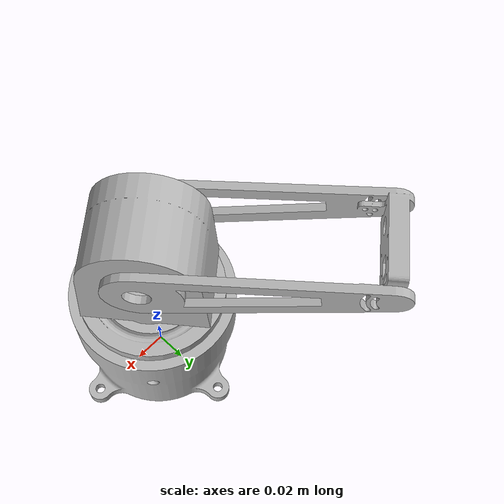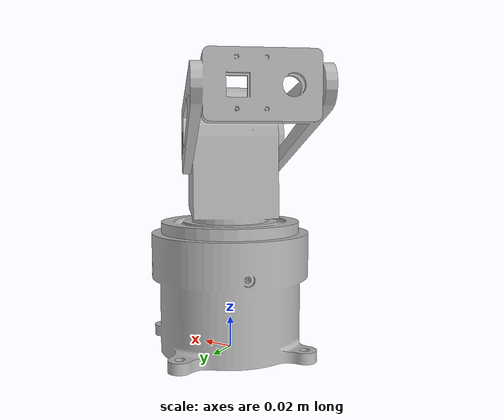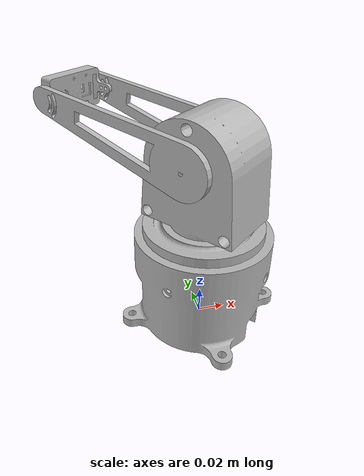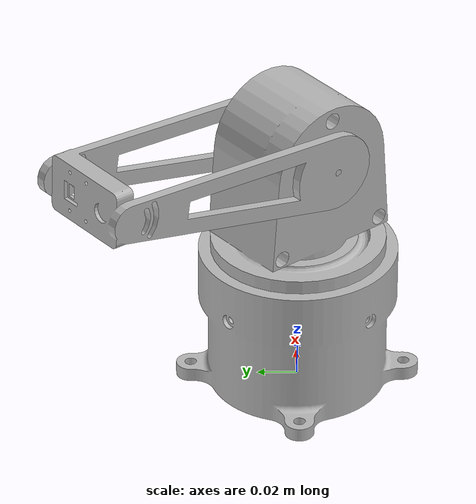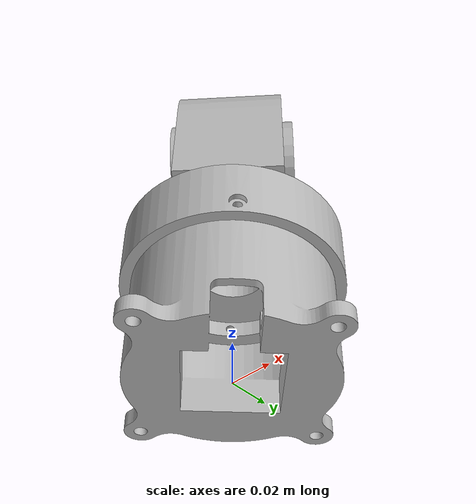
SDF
<sdf version="1.7">
  <model name="Assem1">
    <link name="base_link">
      <inertial>
        <pose>-0.000565 0.000565 0.042565 0 -0 0</pose>
        <mass>0.20107</mass>
        <inertia>
          <ixx>0.00020365</ixx>
          <ixy>-2.8167e-06</ixy>
          <ixz>-1.6706e-06</ixz>
          <iyy>0.00020365</iyy>
          <iyz>1.6706e-06</iyz>
          <izz>0.00033331</izz>
        </inertia>
      </inertial>
      <collision name="base_link_collision">
        <pose>0 0 0 0 -0 0</pose>
        <geometry>
          <mesh>
            <scale>1 1 1</scale>
            <uri>package://urdf_4/meshes/visual/base_link.STL</uri>
          </mesh>
        </geometry>
      </collision>
      <visual name="base_link_visual">
        <pose>0 0 0 0 -0 0</pose>
        <geometry>
          <mesh>
            <scale>1 1 1</scale>
            <uri>package://urdf_4/meshes/visual/base_link.STL</uri>
          </mesh>
        </geometry>
      </visual>
    </link>
    <joint name="Joint_1" type="revolute">
      <pose relative_to="base_link">0 0 0 0 -0 0</pose>
      <parent>base_link</parent>
      <child>Link_1</child>
      <axis>
        <xyz>0 0 -1</xyz>
        <limit>
          <lower>-1.571</lower>
          <upper>1.571</upper>
          <effort>300</effort>
          <velocity>3</velocity>
        </limit>
        <dynamics>
          <spring_reference>0</spring_reference>
          <spring_stiffness>0</spring_stiffness>
        </dynamics>
      </axis>
    </joint>
    <link name="Link_1">
      <pose relative_to="Joint_1">0 0 0 0 -0 0</pose>
      <inertial>
        <pose>-0.000172 -0.000173 0.11465 0 -0 0</pose>
        <mass>0.17103</mass>
        <inertia>
          <ixx>0.00019137</ixx>
          <ixy>2.9717e-05</ixy>
          <ixz>-7.4593e-06</ixz>
          <iyy>0.00017798</iyy>
          <iyz>-6.1658e-06</iyz>
          <izz>0.00012482</izz>
        </inertia>
      </inertial>
      <collision name="Link_1_collision">
        <pose>0 0 0 0 -0 0</pose>
        <geometry>
          <mesh>
            <scale>1 1 1</scale>
            <uri>package://urdf_4/meshes/visual/Link_1.STL</uri>
          </mesh>
        </geometry>
      </collision>
      <visual name="Link_1_visual">
        <pose>0 0 0 0 -0 0</pose>
        <geometry>
          <mesh>
            <scale>1 1 1</scale>
            <uri>package://urdf_4/meshes/visual/Link_1.STL</uri>
          </mesh>
        </geometry>
      </visual>
    </link>
    <joint name="Joint_2" type="revolute">
      <pose relative_to="Link_1">0 0 0.1331 -1.5782 0.16406 -0.94113</pose>
      <parent>Link_1</parent>
      <child>Link_2</child>
      <axis>
        <xyz>0.044733 0 -0.999</xyz>
        <limit>
          <lower>-1.571</lower>
          <upper>1.571</upper>
          <effort>300</effort>
          <velocity>3</velocity>
        </limit>
        <dynamics>
          <spring_reference>0</spring_reference>
          <spring_stiffness>0</spring_stiffness>
        </dynamics>
      </axis>
    </joint>
    <link name="Link_2">
      <pose relative_to="Joint_2">0 0 0 0 -0 0</pose>
      <inertial>
        <pose>-0.063683 -1.7e-05 -0.003599 0 -0 0</pose>
        <mass>0.041761</mass>
        <inertia>
          <ixx>6.5036e-06</ixx>
          <ixy>-7.6644e-08</ixy>
          <ixz>-3.3324e-06</ixz>
          <iyy>7.8543e-05</iyy>
          <iyz>-2.4007e-09</iyz>
          <izz>8.0766e-05</izz>
        </inertia>
      </inertial>
      <collision name="Link_2_collision">
        <pose>0 0 0 0 -0 0</pose>
        <geometry>
          <mesh>
            <scale>1 1 1</scale>
            <uri>package://urdf_4/meshes/visual/Link_2.STL</uri>
          </mesh>
        </geometry>
      </collision>
      <visual name="Link_2_visual">
        <pose>0 0 0 0 -0 0</pose>
        <geometry>
          <mesh>
            <scale>1 1 1</scale>
            <uri>package://urdf_4/meshes/visual/Link_2.STL</uri>
          </mesh>
        </geometry>
      </visual>
    </link>
  </model>
</sdf>
